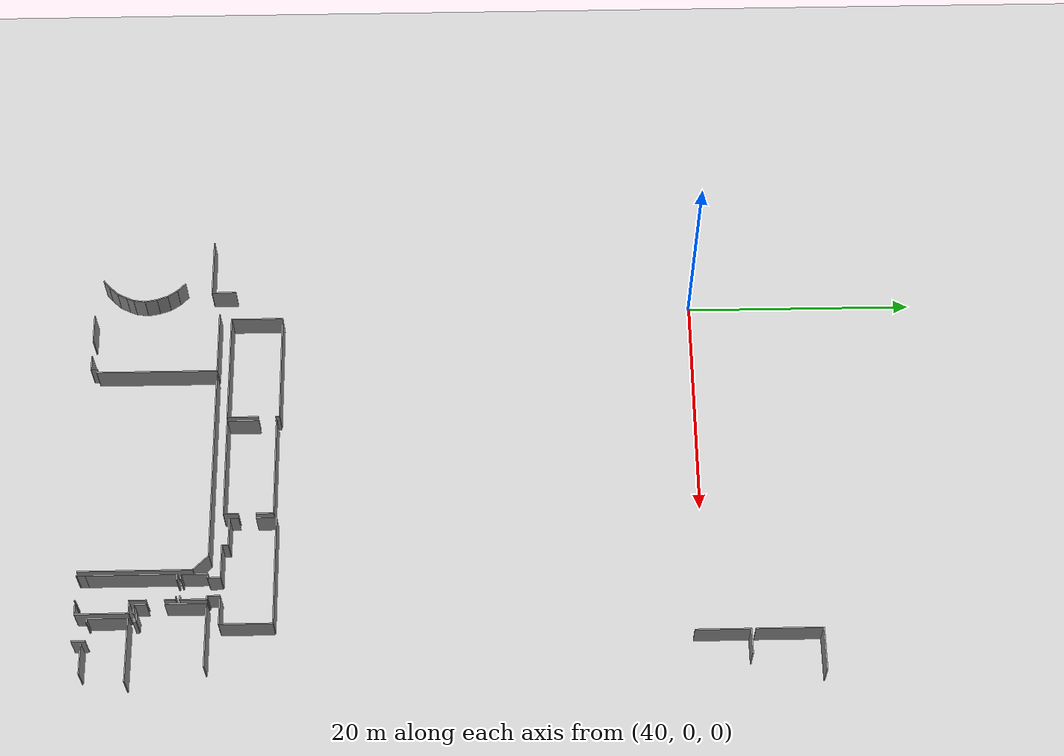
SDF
<sdf version="1.6">
 <world name="default">
  <model name="ground_plane">
   <static>1</static>
   <link name="link">
    <collision name="collision">
     <geometry><plane><normal>0 0 1</normal><size>100 100</size></plane></geometry>
     <surface><friction><ode><mu>100</mu><mu2>50</mu2></ode></friction></surface>
    </collision>
    <visual name="visual">
     <cast_shadows>0</cast_shadows>
     <geometry><plane><normal>0 0 1</normal><size>100 100</size></plane></geometry>
     <material>
      <script><uri>file://media/materials/scripts/gazebo.material</uri><name>Gazebo/Grey</name></script>
     </material>
    </visual>
   </link>
  </model>
  <model name="0510035520_A_40_1_103">
   <static>1</static>
   <link name="Wall_888">
    <collision name="Wall_888_Collision">
     <geometry><box><size>2.15658530085 0.1 2.5</size></box></geometry>
     <pose>1.07829265043 0 1.25 0 0 0</pose>
    </collision>
    <visual name="Wall_888_Visual">
     <pose>1.07829265043 0 1.25 0 0 0</pose>
     <geometry><box><size>2.15658530085 0.1 2.5</size></box></geometry>
     <material>
      <script><uri>file://media/materials/scripts/gazebo.material</uri><name>Gazebo/Grey</name></script>
      <ambient>1 1 1 1</ambient>
     </material>
    </visual>
    <pose>151.033305626 -109.6975273 0 0 0 -1.57079632679</pose>
   </link>
   <link name="Wall_889">
    <collision name="Wall_889_Collision">
     <geometry><box><size>5.26291076833 0.1 2.5</size></box></geometry>
     <pose>2.63145538417 0 1.25 0 0 0</pose>
    </collision>
    <visual name="Wall_889_Visual">
     <pose>2.63145538417 0 1.25 0 0 0</pose>
     <geometry><box><size>5.26291076833 0.1 2.5</size></box></geometry>
     <material>
      <script><uri>file://media/materials/scripts/gazebo.material</uri><name>Gazebo/Grey</name></script>
      <ambient>1 1 1 1</ambient>
     </material>
    </visual>
    <pose>151.033305626 -111.854112601 0 0 0 3.14159265359</pose>
   </link>
   <link name="Wall_895">
    <collision name="Wall_895_Collision">
     <geometry><box><size>1.02171592635 0.1 2.5</size></box></geometry>
     <pose>0.510857963173 0 1.25 0 0 0</pose>
    </collision>
    <visual name="Wall_895_Visual">
     <pose>0.510857963173 0 1.25 0 0 0</pose>
     <geometry><box><size>1.02171592635 0.1 2.5</size></box></geometry>
     <material>
      <script><uri>file://media/materials/scripts/gazebo.material</uri><name>Gazebo/Grey</name></script>
      <ambient>1 1 1 1</ambient>
     </material>
    </visual>
    <pose>150.063768631 -114.301812806 0 0 0 -0.781709439569</pose>
   </link>
   <link name="Wall_896">
    <collision name="Wall_896_Collision">
     <geometry><box><size>1.01096798476 0.1 2.5</size></box></geometry>
     <pose>0.505483992382 0 1.25 0 0 0</pose>
    </collision>
    <visual name="Wall_896_Visual">
     <pose>0.505483992382 0 1.25 0 0 0</pose>
     <geometry><box><size>1.01096798476 0.1 2.5</size></box></geometry>
     <material>
      <script><uri>file://media/materials/scripts/gazebo.material</uri><name>Gazebo/Grey</name></script>
      <ambient>1 1 1 1</ambient>
     </material>
    </visual>
    <pose>150.788890933 -115.021605193 0 0 0 -0.993168673032</pose>
   </link>
   <link name="Wall_897">
    <collision name="Wall_897_Collision">
     <geometry><box><size>1.00410115185 0.1 2.5</size></box></geometry>
     <pose>0.502050575927 0 1.25 0 0 0</pose>
    </collision>
    <visual name="Wall_897_Visual">
     <pose>0.502050575927 0 1.25 0 0 0</pose>
     <geometry><box><size>1.00410115185 0.1 2.5</size></box></geometry>
     <material>
      <script><uri>file://media/materials/scripts/gazebo.material</uri><name>Gazebo/Grey</name></script>
      <ambient>1 1 1 1</ambient>
     </material>
    </visual>
    <pose>151.340917888 -115.868554134 0 0 0 -1.23329841324</pose>
   </link>
   <link name="Wall_898">
    <collision name="Wall_898_Collision">
     <geometry><box><size>1.08447667159 0.1 2.5</size></box></geometry>
     <pose>0.542238335793 0 1.25 0 0 0</pose>
    </collision>
    <visual name="Wall_898_Visual">
     <pose>0.542238335793 0 1.25 0 0 0</pose>
     <geometry><box><size>1.08447667159 0.1 2.5</size></box></geometry>
     <material>
      <script><uri>file://media/materials/scripts/gazebo.material</uri><name>Gazebo/Grey</name></script>
      <ambient>1 1 1 1</ambient>
     </material>
    </visual>
    <pose>151.673403088 -116.816010051 0 0 0 -1.39768321602</pose>
   </link>
   <link name="Wall_899">
    <collision name="Wall_899_Collision">
     <geometry><box><size>1.03104480419 0.1 2.5</size></box></geometry>
     <pose>0.515522402095 0 1.25 0 0 0</pose>
    </collision>
    <visual name="Wall_899_Visual">
     <pose>0.515522402095 0 1.25 0 0 0</pose>
     <geometry><box><size>1.03104480419 0.1 2.5</size></box></geometry>
     <material>
      <script><uri>file://media/materials/scripts/gazebo.material</uri><name>Gazebo/Grey</name></script>
      <ambient>1 1 1 1</ambient>
     </material>
    </visual>
    <pose>151.860203933 -117.884277384 0 0 0 -1.71008242127</pose>
   </link>
   <link name="Wall_900">
    <collision name="Wall_900_Collision">
     <geometry><box><size>0.680349575722 0.1 2.5</size></box></geometry>
     <pose>0.340174787861 0 1.25 0 0 0</pose>
    </collision>
    <visual name="Wall_900_Visual">
     <pose>0.340174787861 0 1.25 0 0 0</pose>
     <geometry><box><size>0.680349575722 0.1 2.5</size></box></geometry>
     <material>
      <script><uri>file://media/materials/scripts/gazebo.material</uri><name>Gazebo/Grey</name></script>
      <ambient>1 1 1 1</ambient>
     </material>
    </visual>
    <pose>151.717057633 -118.905336895 0 0 0 -1.95913073937</pose>
   </link>
   <link name="Wall_901">
    <collision name="Wall_901_Collision">
     <geometry><box><size>0.930298660078 0.1 2.5</size></box></geometry>
     <pose>0.465149330039 0 1.25 0 0 0</pose>
    </collision>
    <visual name="Wall_901_Visual">
     <pose>0.465149330039 0 1.25 0 0 0</pose>
     <geometry><box><size>0.930298660078 0.1 2.5</size></box></geometry>
     <material>
      <script><uri>file://media/materials/scripts/gazebo.material</uri><name>Gazebo/Grey</name></script>
      <ambient>1 1 1 1</ambient>
     </material>
    </visual>
    <pose>151.459445054 -119.535028331 0 0 0 -2.0389583024</pose>
   </link>
   <link name="Wall_902">
    <collision name="Wall_902_Collision">
     <geometry><box><size>1.08077997737 0.1 2.5</size></box></geometry>
     <pose>0.540389988685 0 1.25 0 0 0</pose>
    </collision>
    <visual name="Wall_902_Visual">
     <pose>0.540389988685 0 1.25 0 0 0</pose>
     <geometry><box><size>1.08077997737 0.1 2.5</size></box></geometry>
     <material>
      <script><uri>file://media/materials/scripts/gazebo.material</uri><name>Gazebo/Grey</name></script>
      <ambient>1 1 1 1</ambient>
     </material>
    </visual>
    <pose>151.039650764 -120.365226109 0 0 0 -2.3110124944</pose>
   </link>
   <link name="Wall_903">
    <collision name="Wall_903_Collision">
     <geometry><box><size>0.866992590739 0.1 2.5</size></box></geometry>
     <pose>0.433496295369 0 1.25 0 0 0</pose>
    </collision>
    <visual name="Wall_903_Visual">
     <pose>0.433496295369 0 1.25 0 0 0</pose>
     <geometry><box><size>0.866992590739 0.1 2.5</size></box></geometry>
     <material>
      <script><uri>file://media/materials/scripts/gazebo.material</uri><name>Gazebo/Grey</name></script>
      <ambient>1 1 1 1</ambient>
     </material>
    </visual>
    <pose>150.310721379 -121.163190589 0 0 0 -2.45779928856</pose>
   </link>
   <link name="Wall_1046">
    <collision name="Wall_1046_Collision">
     <geometry><box><size>2.70125189561 0.1 2.5</size></box></geometry>
     <pose>1.3506259478 0 1.25 0 0 0</pose>
    </collision>
    <visual name="Wall_1046_Visual">
     <pose>1.3506259478 0 1.25 0 0 0</pose>
     <geometry><box><size>2.70125189561 0.1 2.5</size></box></geometry>
     <material>
      <script><uri>file://media/materials/scripts/gazebo.material</uri><name>Gazebo/Grey</name></script>
      <ambient>1 1 1 1</ambient>
     </material>
    </visual>
    <pose>185.020907228 -121.533239002 0 0 0 0.0</pose>
   </link>
   <link name="Wall_1051">
    <collision name="Wall_1051_Collision">
     <geometry><box><size>5.72635960432 0.1 2.5</size></box></geometry>
     <pose>2.86317980216 0 1.25 0 0 0</pose>
    </collision>
    <visual name="Wall_1051_Visual">
     <pose>2.86317980216 0 1.25 0 0 0</pose>
     <geometry><box><size>5.72635960432 0.1 2.5</size></box></geometry>
     <material>
      <script><uri>file://media/materials/scripts/gazebo.material</uri><name>Gazebo/Grey</name></script>
      <ambient>1 1 1 1</ambient>
     </material>
    </visual>
    <pose>182.744018122 -117.686055292 0 0 0 0.0</pose>
   </link>
   <link name="Wall_1054">
    <collision name="Wall_1054_Collision">
     <geometry><box><size>1.22334249148 0.1 2.5</size></box></geometry>
     <pose>0.611671245741 0 1.25 0 0 0</pose>
    </collision>
    <visual name="Wall_1054_Visual">
     <pose>0.611671245741 0 1.25 0 0 0</pose>
     <geometry><box><size>1.22334249148 0.1 2.5</size></box></geometry>
     <material>
      <script><uri>file://media/materials/scripts/gazebo.material</uri><name>Gazebo/Grey</name></script>
      <ambient>1 1 1 1</ambient>
     </material>
    </visual>
    <pose>184.760756594 -121.144662788 0 0 0 -1.57079632679</pose>
   </link>
   <link name="Wall_1058">
    <collision name="Wall_1058_Collision">
     <geometry><box><size>0.338322726379 0.1 2.5</size></box></geometry>
     <pose>0.169161363189 0 1.25 0 0 0</pose>
    </collision>
    <visual name="Wall_1058_Visual">
     <pose>0.169161363189 0 1.25 0 0 0</pose>
     <geometry><box><size>0.338322726379 0.1 2.5</size></box></geometry>
     <material>
      <script><uri>file://media/materials/scripts/gazebo.material</uri><name>Gazebo/Grey</name></script>
      <ambient>1 1 1 1</ambient>
     </material>
    </visual>
    <pose>183.079802793 -121.175627058 0 0 0 3.14159265359</pose>
   </link>
   <link name="Wall_1059">
    <collision name="Wall_1059_Collision">
     <geometry><box><size>3.48957268967 0.1 2.5</size></box></geometry>
     <pose>1.74478634484 0 1.25 0 0 0</pose>
    </collision>
    <visual name="Wall_1059_Visual">
     <pose>1.74478634484 0 1.25 0 0 0</pose>
     <geometry><box><size>3.48957268967 0.1 2.5</size></box></geometry>
     <material>
      <script><uri>file://media/materials/scripts/gazebo.material</uri><name>Gazebo/Grey</name></script>
      <ambient>1 1 1 1</ambient>
     </material>
    </visual>
    <pose>182.741480067 -121.175627058 0 0 0 1.5700690013</pose>
   </link>
   <link name="Wall_1060">
    <collision name="Wall_1060_Collision">
     <geometry><box><size>7.81949353113 0.1 2.5</size></box></geometry>
     <pose>3.90974676557 0 1.25 0 0 0</pose>
    </collision>
    <visual name="Wall_1060_Visual">
     <pose>3.90974676557 0 1.25 0 0 0</pose>
     <geometry><box><size>7.81949353113 0.1 2.5</size></box></geometry>
     <material>
      <script><uri>file://media/materials/scripts/gazebo.material</uri><name>Gazebo/Grey</name></script>
      <ambient>1 1 1 1</ambient>
     </material>
    </visual>
    <pose>178.759525638 -121.542883611 0 0 0 1.57079632679</pose>
   </link>
   <link name="Wall_1061">
    <collision name="Wall_1061_Collision">
     <geometry><box><size>0.506849575828 0.1 2.5</size></box></geometry>
     <pose>0.253424787914 0 1.25 0 0 0</pose>
    </collision>
    <visual name="Wall_1061_Visual">
     <pose>0.253424787914 0 1.25 0 0 0</pose>
     <geometry><box><size>0.506849575828 0.1 2.5</size></box></geometry>
     <material>
      <script><uri>file://media/materials/scripts/gazebo.material</uri><name>Gazebo/Grey</name></script>
      <ambient>1 1 1 1</ambient>
     </material>
    </visual>
    <pose>178.759525638 -113.72339008 0 0 0 0.0</pose>
   </link>
   <link name="Wall_1062">
    <collision name="Wall_1062_Collision">
     <geometry><box><size>0.338830337371 0.1 2.5</size></box></geometry>
     <pose>0.169415168685 0 1.25 0 0 0</pose>
    </collision>
    <visual name="Wall_1062_Visual">
     <pose>0.169415168685 0 1.25 0 0 0</pose>
     <geometry><box><size>0.338830337371 0.1 2.5</size></box></geometry>
     <material>
      <script><uri>file://media/materials/scripts/gazebo.material</uri><name>Gazebo/Grey</name></script>
      <ambient>1 1 1 1</ambient>
     </material>
    </visual>
    <pose>180.783370664 -113.72339008 0 0 0 0.0</pose>
   </link>
   <link name="Wall_1063">
    <collision name="Wall_1063_Collision">
     <geometry><box><size>0.975882132728 0.1 2.5</size></box></geometry>
     <pose>0.487941066364 0 1.25 0 0 0</pose>
    </collision>
    <visual name="Wall_1063_Visual">
     <pose>0.487941066364 0 1.25 0 0 0</pose>
     <geometry><box><size>0.975882132728 0.1 2.5</size></box></geometry>
     <material>
      <script><uri>file://media/materials/scripts/gazebo.material</uri><name>Gazebo/Grey</name></script>
      <ambient>1 1 1 1</ambient>
     </material>
    </visual>
    <pose>181.122201001 -113.72339008 0 0 0 -1.57079632679</pose>
   </link>
   <link name="Wall_1064">
    <collision name="Wall_1064_Collision">
     <geometry><box><size>1.5129345626 0.1 2.5</size></box></geometry>
     <pose>0.756467281299 0 1.25 0 0 0</pose>
    </collision>
    <visual name="Wall_1064_Visual">
     <pose>0.756467281299 0 1.25 0 0 0</pose>
     <geometry><box><size>1.5129345626 0.1 2.5</size></box></geometry>
     <material>
      <script><uri>file://media/materials/scripts/gazebo.material</uri><name>Gazebo/Grey</name></script>
      <ambient>1 1 1 1</ambient>
     </material>
    </visual>
    <pose>181.122201001 -116.200277917 0 0 0 -1.57079632679</pose>
   </link>
   <link name="Wall_1065">
    <collision name="Wall_1065_Collision">
     <geometry><box><size>0.0992379489978 0.1 2.5</size></box></geometry>
     <pose>0.0496189744989 0 1.25 0 0 0</pose>
    </collision>
    <visual name="Wall_1065_Visual">
     <pose>0.0496189744989 0 1.25 0 0 0</pose>
     <geometry><box><size>0.0992379489978 0.1 2.5</size></box></geometry>
     <material>
      <script><uri>file://media/materials/scripts/gazebo.material</uri><name>Gazebo/Grey</name></script>
      <ambient>1 1 1 1</ambient>
     </material>
    </visual>
    <pose>181.122201001 -122.179935407 0 0 0 -1.57079632679</pose>
   </link>
   <link name="Wall_1066">
    <collision name="Wall_1066_Collision">
     <geometry><box><size>0.116750528233 0.1 2.5</size></box></geometry>
     <pose>0.0583752641163 0 1.25 0 0 0</pose>
    </collision>
    <visual name="Wall_1066_Visual">
     <pose>0.0583752641163 0 1.25 0 0 0</pose>
     <geometry><box><size>0.116750528233 0.1 2.5</size></box></geometry>
     <material>
      <script><uri>file://media/materials/scripts/gazebo.material</uri><name>Gazebo/Grey</name></script>
      <ambient>1 1 1 1</ambient>
     </material>
    </visual>
    <pose>181.122201001 -122.279173355 0 0 0 3.14159265359</pose>
   </link>
   <link name="Wall_1067">
    <collision name="Wall_1067_Collision">
     <geometry><box><size>0.0763954543436 0.1 2.5</size></box></geometry>
     <pose>0.0381977271718 0 1.25 0 0 0</pose>
    </collision>
    <visual name="Wall_1067_Visual">
     <pose>0.0381977271718 0 1.25 0 0 0</pose>
     <geometry><box><size>0.0763954543436 0.1 2.5</size></box></geometry>
     <material>
      <script><uri>file://media/materials/scripts/gazebo.material</uri><name>Gazebo/Grey</name></script>
      <ambient>1 1 1 1</ambient>
     </material>
    </visual>
    <pose>178.824499845 -122.279173355 0 0 0 3.14159265359</pose>
   </link>
   <link name="Wall_1068">
    <collision name="Wall_1068_Collision">
     <geometry><box><size>0.736378321607 0.1 2.5</size></box></geometry>
     <pose>0.368189160803 0 1.25 0 0 0</pose>
    </collision>
    <visual name="Wall_1068_Visual">
     <pose>0.368189160803 0 1.25 0 0 0</pose>
     <geometry><box><size>0.736378321607 0.1 2.5</size></box></geometry>
     <material>
      <script><uri>file://media/materials/scripts/gazebo.material</uri><name>Gazebo/Grey</name></script>
      <ambient>1 1 1 1</ambient>
     </material>
    </visual>
    <pose>178.74810439 -122.279173355 0 0 0 1.55528567832</pose>
   </link>
   <link name="Wall_1070">
    <collision name="Wall_1070_Collision">
     <geometry><box><size>17.6478575644 0.1 2.5</size></box></geometry>
     <pose>8.82392878218 0 1.25 0 0 0</pose>
    </collision>
    <visual name="Wall_1070_Visual">
     <pose>8.82392878218 0 1.25 0 0 0</pose>
     <geometry><box><size>17.6478575644 0.1 2.5</size></box></geometry>
     <material>
      <script><uri>file://media/materials/scripts/gazebo.material</uri><name>Gazebo/Grey</name></script>
      <ambient>1 1 1 1</ambient>
     </material>
    </visual>
    <pose>159.45279535 -111.095741778 0 0 0 0.0</pose>
   </link>
   <link name="Wall_1071">
    <collision name="Wall_1071_Collision">
     <geometry><box><size>1.81790381385 0.1 2.5</size></box></geometry>
     <pose>0.908951906926 0 1.25 0 0 0</pose>
    </collision>
    <visual name="Wall_1071_Visual">
     <pose>0.908951906926 0 1.25 0 0 0</pose>
     <geometry><box><size>1.81790381385 0.1 2.5</size></box></geometry>
     <material>
      <script><uri>file://media/materials/scripts/gazebo.material</uri><name>Gazebo/Grey</name></script>
      <ambient>1 1 1 1</ambient>
     </material>
    </visual>
    <pose>177.100652915 -111.095741778 0 0 0 -0.794579463309</pose>
   </link>
   <link name="Wall_1072">
    <collision name="Wall_1072_Collision">
     <geometry><box><size>9.91541931841 0.1 2.5</size></box></geometry>
     <pose>4.9577096592 0 1.25 0 0 0</pose>
    </collision>
    <visual name="Wall_1072_Visual">
     <pose>4.9577096592 0 1.25 0 0 0</pose>
     <geometry><box><size>9.91541931841 0.1 2.5</size></box></geometry>
     <material>
      <script><uri>file://media/materials/scripts/gazebo.material</uri><name>Gazebo/Grey</name></script>
      <ambient>1 1 1 1</ambient>
     </material>
    </visual>
    <pose>178.374248894 -112.392941669 0 0 0 -1.57079632679</pose>
   </link>
   <link name="Wall_1076">
    <collision name="Wall_1076_Collision">
     <geometry><box><size>5.79767894874 0.1 2.5</size></box></geometry>
     <pose>2.89883947437 0 1.25 0 0 0</pose>
    </collision>
    <visual name="Wall_1076_Visual">
     <pose>2.89883947437 0 1.25 0 0 0</pose>
     <geometry><box><size>5.79767894874 0.1 2.5</size></box></geometry>
     <material>
      <script><uri>file://media/materials/scripts/gazebo.material</uri><name>Gazebo/Grey</name></script>
      <ambient>1 1 1 1</ambient>
     </material>
    </visual>
    <pose>153.272631519 -111.088635224 0 0 0 0.0</pose>
   </link>
   <link name="Wall_1077">
    <collision name="Wall_1077_Collision">
     <geometry><box><size>10.6816581113 0.1 2.5</size></box></geometry>
     <pose>5.34082905565 0 1.25 0 0 0</pose>
    </collision>
    <visual name="Wall_1077_Visual">
     <pose>5.34082905565 0 1.25 0 0 0</pose>
     <geometry><box><size>10.6816581113 0.1 2.5</size></box></geometry>
     <material>
      <script><uri>file://media/materials/scripts/gazebo.material</uri><name>Gazebo/Grey</name></script>
      <ambient>1 1 1 1</ambient>
     </material>
    </visual>
    <pose>159.070310468 -111.088635224 0 0 0 -1.57079632679</pose>
   </link>
   <link name="Wall_1078">
    <collision name="Wall_1078_Collision">
     <geometry><box><size>0.326901479052 0.1 2.5</size></box></geometry>
     <pose>0.163450739526 0 1.25 0 0 0</pose>
    </collision>
    <visual name="Wall_1078_Visual">
     <pose>0.163450739526 0 1.25 0 0 0</pose>
     <geometry><box><size>0.326901479052 0.1 2.5</size></box></geometry>
     <material>
      <script><uri>file://media/materials/scripts/gazebo.material</uri><name>Gazebo/Grey</name></script>
      <ambient>1 1 1 1</ambient>
     </material>
    </visual>
    <pose>159.070310468 -121.770293336 0 0 0 3.14159265359</pose>
   </link>
   <link name="Wall_1079">
    <collision name="Wall_1079_Collision">
     <geometry><box><size>0.529184459489 0.1 2.5</size></box></geometry>
     <pose>0.264592229745 0 1.25 0 0 0</pose>
    </collision>
    <visual name="Wall_1079_Visual">
     <pose>0.264592229745 0 1.25 0 0 0</pose>
     <geometry><box><size>0.529184459489 0.1 2.5</size></box></geometry>
     <material>
      <script><uri>file://media/materials/scripts/gazebo.material</uri><name>Gazebo/Grey</name></script>
      <ambient>1 1 1 1</ambient>
     </material>
    </visual>
    <pose>158.743408989 -121.770293336 0 0 0 -1.57079632679</pose>
   </link>
   <link name="Wall_1080">
    <collision name="Wall_1080_Collision">
     <geometry><box><size>1.35303710002 0.1 2.5</size></box></geometry>
     <pose>0.676518550009 0 1.25 0 0 0</pose>
    </collision>
    <visual name="Wall_1080_Visual">
     <pose>0.676518550009 0 1.25 0 0 0</pose>
     <geometry><box><size>1.35303710002 0.1 2.5</size></box></geometry>
     <material>
      <script><uri>file://media/materials/scripts/gazebo.material</uri><name>Gazebo/Grey</name></script>
      <ambient>1 1 1 1</ambient>
     </material>
    </visual>
    <pose>158.743408989 -122.299477795 0 0 0 3.14159265359</pose>
   </link>
   <link name="Wall_1081">
    <collision name="Wall_1081_Collision">
     <geometry><box><size>2.59293271033 0.1 2.5</size></box></geometry>
     <pose>1.29646635517 0 1.25 0 0 0</pose>
    </collision>
    <visual name="Wall_1081_Visual">
     <pose>1.29646635517 0 1.25 0 0 0</pose>
     <geometry><box><size>2.59293271033 0.1 2.5</size></box></geometry>
     <material>
      <script><uri>file://media/materials/scripts/gazebo.material</uri><name>Gazebo/Grey</name></script>
      <ambient>1 1 1 1</ambient>
     </material>
    </visual>
    <pose>155.865508468 -122.299477795 0 0 0 -3.13503440776</pose>
   </link>
   <link name="Wall_1124">
    <collision name="Wall_1124_Collision">
     <geometry><box><size>0.928928115938 0.1 2.5</size></box></geometry>
     <pose>0.464464057969 0 1.25 0 0 0</pose>
    </collision>
    <visual name="Wall_1124_Visual">
     <pose>0.464464057969 0 1.25 0 0 0</pose>
     <geometry><box><size>0.928928115938 0.1 2.5</size></box></geometry>
     <material>
      <script><uri>file://media/materials/scripts/gazebo.material</uri><name>Gazebo/Grey</name></script>
      <ambient>1 1 1 1</ambient>
     </material>
    </visual>
    <pose>182.318386305 -122.245924836 0 0 0 3.14159265359</pose>
   </link>
   <link name="Wall_1125">
    <collision name="Wall_1125_Collision">
     <geometry><box><size>0.0715731499166 0.1 2.5</size></box></geometry>
     <pose>0.0357865749583 0 1.25 0 0 0</pose>
    </collision>
    <visual name="Wall_1125_Visual">
     <pose>0.0357865749583 0 1.25 0 0 0</pose>
     <geometry><box><size>0.0715731499166 0.1 2.5</size></box></geometry>
     <material>
      <script><uri>file://media/materials/scripts/gazebo.material</uri><name>Gazebo/Grey</name></script>
      <ambient>1 1 1 1</ambient>
     </material>
    </visual>
    <pose>181.389458189 -122.245924836 0 0 0 1.57079632679</pose>
   </link>
   <link name="Wall_1126">
    <collision name="Wall_1126_Collision">
     <geometry><box><size>0.0538067651855 0.1 2.5</size></box></geometry>
     <pose>0.0269033825927 0 1.25 0 0 0</pose>
    </collision>
    <visual name="Wall_1126_Visual">
     <pose>0.0269033825927 0 1.25 0 0 0</pose>
     <geometry><box><size>0.0538067651855 0.1 2.5</size></box></geometry>
     <material>
      <script><uri>file://media/materials/scripts/gazebo.material</uri><name>Gazebo/Grey</name></script>
      <ambient>1 1 1 1</ambient>
     </material>
    </visual>
    <pose>181.389458189 -117.712704869 0 0 0 1.57079632679</pose>
   </link>
   <link name="Wall_1127">
    <collision name="Wall_1127_Collision">
     <geometry><box><size>0.907100843269 0.1 2.5</size></box></geometry>
     <pose>0.453550421634 0 1.25 0 0 0</pose>
    </collision>
    <visual name="Wall_1127_Visual">
     <pose>0.453550421634 0 1.25 0 0 0</pose>
     <geometry><box><size>0.907100843269 0.1 2.5</size></box></geometry>
     <material>
      <script><uri>file://media/materials/scripts/gazebo.material</uri><name>Gazebo/Grey</name></script>
      <ambient>1 1 1 1</ambient>
     </material>
    </visual>
    <pose>181.389458189 -117.658898103 0 0 0 0.0</pose>
   </link>
   <link name="Wall_1128">
    <collision name="Wall_1128_Collision">
     <geometry><box><size>4.58707866408 0.1 2.5</size></box></geometry>
     <pose>2.29353933204 0 1.25 0 0 0</pose>
    </collision>
    <visual name="Wall_1128_Visual">
     <pose>2.29353933204 0 1.25 0 0 0</pose>
     <geometry><box><size>4.58707866408 0.1 2.5</size></box></geometry>
     <material>
      <script><uri>file://media/materials/scripts/gazebo.material</uri><name>Gazebo/Grey</name></script>
      <ambient>1 1 1 1</ambient>
     </material>
    </visual>
    <pose>182.296559032 -117.658898103 0 0 0 -1.56603788321</pose>
   </link>
   <link name="Wall_1129">
    <collision name="Wall_1129_Collision">
     <geometry><box><size>5.72864385378 0.1 2.5</size></box></geometry>
     <pose>2.86432192689 0 1.25 0 0 0</pose>
    </collision>
    <visual name="Wall_1129_Visual">
     <pose>2.86432192689 0 1.25 0 0 0</pose>
     <geometry><box><size>5.72864385378 0.1 2.5</size></box></geometry>
     <material>
      <script><uri>file://media/materials/scripts/gazebo.material</uri><name>Gazebo/Grey</name></script>
      <ambient>1 1 1 1</ambient>
     </material>
    </visual>
    <pose>181.493772248 -111.095741778 0 0 0 0.0</pose>
   </link>
   <link name="Wall_1132">
    <collision name="Wall_1132_Collision">
     <geometry><box><size>0.290353487605 0.1 2.5</size></box></geometry>
     <pose>0.145176743802 0 1.25 0 0 0</pose>
    </collision>
    <visual name="Wall_1132_Visual">
     <pose>0.145176743802 0 1.25 0 0 0</pose>
     <geometry><box><size>0.290353487605 0.1 2.5</size></box></geometry>
     <material>
      <script><uri>file://media/materials/scripts/gazebo.material</uri><name>Gazebo/Grey</name></script>
      <ambient>1 1 1 1</ambient>
     </material>
    </visual>
    <pose>183.083609876 -117.247225589 0 0 0 1.57079632679</pose>
   </link>
   <link name="Wall_1133">
    <collision name="Wall_1133_Collision">
     <geometry><box><size>0.77156870832 0.1 2.5</size></box></geometry>
     <pose>0.38578435416 0 1.25 0 0 0</pose>
    </collision>
    <visual name="Wall_1133_Visual">
     <pose>0.38578435416 0 1.25 0 0 0</pose>
     <geometry><box><size>0.77156870832 0.1 2.5</size></box></geometry>
     <material>
      <script><uri>file://media/materials/scripts/gazebo.material</uri><name>Gazebo/Grey</name></script>
      <ambient>1 1 1 1</ambient>
     </material>
    </visual>
    <pose>183.083609876 -116.956872101 0 0 0 3.14159265359</pose>
   </link>
   <link name="Wall_1134">
    <collision name="Wall_1134_Collision">
     <geometry><box><size>0.273602324858 0.1 2.5</size></box></geometry>
     <pose>0.136801162429 0 1.25 0 0 0</pose>
    </collision>
    <visual name="Wall_1134_Visual">
     <pose>0.136801162429 0 1.25 0 0 0</pose>
     <geometry><box><size>0.273602324858 0.1 2.5</size></box></geometry>
     <material>
      <script><uri>file://media/materials/scripts/gazebo.material</uri><name>Gazebo/Grey</name></script>
      <ambient>1 1 1 1</ambient>
     </material>
    </visual>
    <pose>182.312041167 -116.956872101 0 0 0 -1.57079632679</pose>
   </link>
   <link name="Wall_1135">
    <collision name="Wall_1135_Collision">
     <geometry><box><size>0.807355283279 0.1 2.5</size></box></geometry>
     <pose>0.403677641639 0 1.25 0 0 0</pose>
    </collision>
    <visual name="Wall_1135_Visual">
     <pose>0.403677641639 0 1.25 0 0 0</pose>
     <geometry><box><size>0.807355283279 0.1 2.5</size></box></geometry>
     <material>
      <script><uri>file://media/materials/scripts/gazebo.material</uri><name>Gazebo/Grey</name></script>
      <ambient>1 1 1 1</ambient>
     </material>
    </visual>
    <pose>182.312041167 -117.230474426 0 0 0 3.14159265359</pose>
   </link>
   <link name="Wall_1136">
    <collision name="Wall_1136_Collision">
     <geometry><box><size>1.04669386616 0.1 2.5</size></box></geometry>
     <pose>0.523346933078 0 1.25 0 0 0</pose>
    </collision>
    <visual name="Wall_1136_Visual">
     <pose>0.523346933078 0 1.25 0 0 0</pose>
     <geometry><box><size>1.04669386616 0.1 2.5</size></box></geometry>
     <material>
      <script><uri>file://media/materials/scripts/gazebo.material</uri><name>Gazebo/Grey</name></script>
      <ambient>1 1 1 1</ambient>
     </material>
    </visual>
    <pose>181.504685884 -117.230474426 0 0 0 1.57079632679</pose>
   </link>
   <link name="Wall_1137">
    <collision name="Wall_1137_Collision">
     <geometry><box><size>3.54009588308 0.1 2.5</size></box></geometry>
     <pose>1.77004794154 0 1.25 0 0 0</pose>
    </collision>
    <visual name="Wall_1137_Visual">
     <pose>1.77004794154 0 1.25 0 0 0</pose>
     <geometry><box><size>3.54009588308 0.1 2.5</size></box></geometry>
     <material>
      <script><uri>file://media/materials/scripts/gazebo.material</uri><name>Gazebo/Grey</name></script>
      <ambient>1 1 1 1</ambient>
     </material>
    </visual>
    <pose>181.504685884 -114.635820839 0 0 0 1.57387919629</pose>
   </link>
   <link name="Wall_1138">
    <collision name="Wall_1138_Collision">
     <geometry><box><size>9.88394743688 0.1 2.5</size></box></geometry>
     <pose>4.94197371844 0 1.25 0 0 0</pose>
    </collision>
    <visual name="Wall_1138_Visual">
     <pose>4.94197371844 0 1.25 0 0 0</pose>
     <geometry><box><size>9.88394743688 0.1 2.5</size></box></geometry>
     <material>
      <script><uri>file://media/materials/scripts/gazebo.material</uri><name>Gazebo/Grey</name></script>
      <ambient>1 1 1 1</ambient>
     </material>
    </visual>
    <pose>173.550421634 -105.408975831 0 0 0 0.0</pose>
   </link>
   <link name="Wall_1139">
    <collision name="Wall_1139_Collision">
     <geometry><box><size>4.58245823313 0.1 2.5</size></box></geometry>
     <pose>2.29122911657 0 1.25 0 0 0</pose>
    </collision>
    <visual name="Wall_1139_Visual">
     <pose>2.29122911657 0 1.25 0 0 0</pose>
     <geometry><box><size>4.58245823313 0.1 2.5</size></box></geometry>
     <material>
      <script><uri>file://media/materials/scripts/gazebo.material</uri><name>Gazebo/Grey</name></script>
      <ambient>1 1 1 1</ambient>
     </material>
    </visual>
    <pose>183.434369071 -105.408975831 0 0 0 -1.57079632679</pose>
   </link>
   <link name="Wall_1140">
    <collision name="Wall_1140_Collision">
     <geometry><box><size>2.62130316432 0.1 2.5</size></box></geometry>
     <pose>1.31065158216 0 1.25 0 0 0</pose>
    </collision>
    <visual name="Wall_1140_Visual">
     <pose>1.31065158216 0 1.25 0 0 0</pose>
     <geometry><box><size>2.62130316432 0.1 2.5</size></box></geometry>
     <material>
      <script><uri>file://media/materials/scripts/gazebo.material</uri><name>Gazebo/Grey</name></script>
      <ambient>1 1 1 1</ambient>
     </material>
    </visual>
    <pose>183.434369071 -109.991434065 0 0 0 3.14159265359</pose>
   </link>
   <link name="Wall_1141">
    <collision name="Wall_1141_Collision">
     <geometry><box><size>1.08730274554 0.1 2.5</size></box></geometry>
     <pose>0.54365137277 0 1.25 0 0 0</pose>
    </collision>
    <visual name="Wall_1141_Visual">
     <pose>0.54365137277 0 1.25 0 0 0</pose>
     <geometry><box><size>1.08730274554 0.1 2.5</size></box></geometry>
     <material>
      <script><uri>file://media/materials/scripts/gazebo.material</uri><name>Gazebo/Grey</name></script>
      <ambient>1 1 1 1</ambient>
     </material>
    </visual>
    <pose>180.813065907 -109.991434065 0 0 0 -1.57079632679</pose>
   </link>
   <link name="Wall_1142">
    <collision name="Wall_1142_Collision">
     <geometry><box><size>0.309896510809 0.1 2.5</size></box></geometry>
     <pose>0.154948255404 0 1.25 0 0 0</pose>
    </collision>
    <visual name="Wall_1142_Visual">
     <pose>0.154948255404 0 1.25 0 0 0</pose>
     <geometry><box><size>0.309896510809 0.1 2.5</size></box></geometry>
     <material>
      <script><uri>file://media/materials/scripts/gazebo.material</uri><name>Gazebo/Grey</name></script>
      <ambient>1 1 1 1</ambient>
     </material>
    </visual>
    <pose>180.813065907 -111.07873681 0 0 0 0.0</pose>
   </link>
   <link name="Wall_1143">
    <collision name="Wall_1143_Collision">
     <geometry><box><size>2.30658434908 0.1 2.5</size></box></geometry>
     <pose>1.15329217454 0 1.25 0 0 0</pose>
    </collision>
    <visual name="Wall_1143_Visual">
     <pose>1.15329217454 0 1.25 0 0 0</pose>
     <geometry><box><size>2.30658434908 0.1 2.5</size></box></geometry>
     <material>
      <script><uri>file://media/materials/scripts/gazebo.material</uri><name>Gazebo/Grey</name></script>
      <ambient>1 1 1 1</ambient>
     </material>
    </visual>
    <pose>181.122962418 -111.07873681 0 0 0 -1.57079632679</pose>
   </link>
   <link name="Wall_1144">
    <collision name="Wall_1144_Collision">
     <geometry><box><size>0.367256552941 0.1 2.5</size></box></geometry>
     <pose>0.18362827647 0 1.25 0 0 0</pose>
    </collision>
    <visual name="Wall_1144_Visual">
     <pose>0.18362827647 0 1.25 0 0 0</pose>
     <geometry><box><size>0.367256552941 0.1 2.5</size></box></geometry>
     <material>
      <script><uri>file://media/materials/scripts/gazebo.material</uri><name>Gazebo/Grey</name></script>
      <ambient>1 1 1 1</ambient>
     </material>
    </visual>
    <pose>181.122962418 -113.385321159 0 0 0 3.14159265359</pose>
   </link>
   <link name="Wall_1145">
    <collision name="Wall_1145_Collision">
     <geometry><box><size>0.425378011561 0.1 2.5</size></box></geometry>
     <pose>0.21268900578 0 1.25 0 0 0</pose>
    </collision>
    <visual name="Wall_1145_Visual">
     <pose>0.21268900578 0 1.25 0 0 0</pose>
     <geometry><box><size>0.425378011561 0.1 2.5</size></box></geometry>
     <material>
      <script><uri>file://media/materials/scripts/gazebo.material</uri><name>Gazebo/Grey</name></script>
      <ambient>1 1 1 1</ambient>
     </material>
    </visual>
    <pose>179.200893395 -113.385321159 0 0 0 3.14159265359</pose>
   </link>
   <link name="Wall_1146">
    <collision name="Wall_1146_Collision">
     <geometry><box><size>2.29135601931 0.1 2.5</size></box></geometry>
     <pose>1.14567800966 0 1.25 0 0 0</pose>
    </collision>
    <visual name="Wall_1146_Visual">
     <pose>1.14567800966 0 1.25 0 0 0</pose>
     <geometry><box><size>2.29135601931 0.1 2.5</size></box></geometry>
     <material>
      <script><uri>file://media/materials/scripts/gazebo.material</uri><name>Gazebo/Grey</name></script>
      <ambient>1 1 1 1</ambient>
     </material>
    </visual>
    <pose>178.775515384 -113.385321159 0 0 0 1.57079632679</pose>
   </link>
   <link name="Wall_1147">
    <collision name="Wall_1147_Collision">
     <geometry><box><size>0.370809829887 0.1 2.5</size></box></geometry>
     <pose>0.185404914943 0 1.25 0 0 0</pose>
    </collision>
    <visual name="Wall_1147_Visual">
     <pose>0.185404914943 0 1.25 0 0 0</pose>
     <geometry><box><size>0.370809829887 0.1 2.5</size></box></geometry>
     <material>
      <script><uri>file://media/materials/scripts/gazebo.material</uri><name>Gazebo/Grey</name></script>
      <ambient>1 1 1 1</ambient>
     </material>
    </visual>
    <pose>178.775515384 -111.09396514 0 0 0 0.0</pose>
   </link>
   <link name="Wall_1148">
    <collision name="Wall_1148_Collision">
     <geometry><box><size>1.09110982798 0.1 2.5</size></box></geometry>
     <pose>0.545554913992 0 1.25 0 0 0</pose>
    </collision>
    <visual name="Wall_1148_Visual">
     <pose>0.545554913992 0 1.25 0 0 0</pose>
     <geometry><box><size>1.09110982798 0.1 2.5</size></box></geometry>
     <material>
      <script><uri>file://media/materials/scripts/gazebo.material</uri><name>Gazebo/Grey</name></script>
      <ambient>1 1 1 1</ambient>
     </material>
    </visual>
    <pose>179.146325214 -111.09396514 0 0 0 1.57079632679</pose>
   </link>
   <link name="Wall_1149">
    <collision name="Wall_1149_Collision">
     <geometry><box><size>3.02434629222 0.1 2.5</size></box></geometry>
     <pose>1.51217314611 0 1.25 0 0 0</pose>
    </collision>
    <visual name="Wall_1149_Visual">
     <pose>1.51217314611 0 1.25 0 0 0</pose>
     <geometry><box><size>3.02434629222 0.1 2.5</size></box></geometry>
     <material>
      <script><uri>file://media/materials/scripts/gazebo.material</uri><name>Gazebo/Grey</name></script>
      <ambient>1 1 1 1</ambient>
     </material>
    </visual>
    <pose>179.146325214 -110.002855312 0 0 0 3.14159265359</pose>
   </link>
   <link name="Wall_1150">
    <collision name="Wall_1150_Collision">
     <geometry><box><size>0.55228075964 0.1 2.5</size></box></geometry>
     <pose>0.27614037982 0 1.25 0 0 0</pose>
    </collision>
    <visual name="Wall_1150_Visual">
     <pose>0.27614037982 0 1.25 0 0 0</pose>
     <geometry><box><size>0.55228075964 0.1 2.5</size></box></geometry>
     <material>
      <script><uri>file://media/materials/scripts/gazebo.material</uri><name>Gazebo/Grey</name></script>
      <ambient>1 1 1 1</ambient>
     </material>
    </visual>
    <pose>176.121978921 -110.002855312 0 0 0 1.57079632679</pose>
   </link>
   <link name="Wall_1151">
    <collision name="Wall_1151_Collision">
     <geometry><box><size>2.55252187486 0.1 2.5</size></box></geometry>
     <pose>1.27626093743 0 1.25 0 0 0</pose>
    </collision>
    <visual name="Wall_1151_Visual">
     <pose>1.27626093743 0 1.25 0 0 0</pose>
     <geometry><box><size>2.55252187486 0.1 2.5</size></box></geometry>
     <material>
      <script><uri>file://media/materials/scripts/gazebo.material</uri><name>Gazebo/Grey</name></script>
      <ambient>1 1 1 1</ambient>
     </material>
    </visual>
    <pose>176.121978921 -109.450574552 0 0 0 3.14159265359</pose>
   </link>
   <link name="Wall_1152">
    <collision name="Wall_1152_Collision">
     <geometry><box><size>0.782482344655 0.1 2.5</size></box></geometry>
     <pose>0.391241172328 0 1.25 0 0 0</pose>
    </collision>
    <visual name="Wall_1152_Visual">
     <pose>0.391241172328 0 1.25 0 0 0</pose>
     <geometry><box><size>0.782482344655 0.1 2.5</size></box></geometry>
     <material>
      <script><uri>file://media/materials/scripts/gazebo.material</uri><name>Gazebo/Grey</name></script>
      <ambient>1 1 1 1</ambient>
     </material>
    </visual>
    <pose>173.569457047 -109.450574552 0 0 0 1.57079632679</pose>
   </link>
   <link name="Wall_1153">
    <collision name="Wall_1153_Collision">
     <geometry><box><size>1.73943322489 0.1 2.5</size></box></geometry>
     <pose>0.869716612447 0 1.25 0 0 0</pose>
    </collision>
    <visual name="Wall_1153_Visual">
     <pose>0.869716612447 0 1.25 0 0 0</pose>
     <geometry><box><size>1.73943322489 0.1 2.5</size></box></geometry>
     <material>
      <script><uri>file://media/materials/scripts/gazebo.material</uri><name>Gazebo/Grey</name></script>
      <ambient>1 1 1 1</ambient>
     </material>
    </visual>
    <pose>173.569457047 -107.148304897 0 0 0 1.58174000196</pose>
   </link>
   <link name="Wall_1154">
    <collision name="Wall_1154_Collision">
     <geometry><box><size>2.77993159942 0.1 2.5</size></box></geometry>
     <pose>1.38996579971 0 1.25 0 0 0</pose>
    </collision>
    <visual name="Wall_1154_Visual">
     <pose>1.38996579971 0 1.25 0 0 0</pose>
     <geometry><box><size>2.77993159942 0.1 2.5</size></box></geometry>
     <material>
      <script><uri>file://media/materials/scripts/gazebo.material</uri><name>Gazebo/Grey</name></script>
      <ambient>1 1 1 1</ambient>
     </material>
    </visual>
    <pose>164.105557706 -109.996256369 0 0 0 1.57079632679</pose>
   </link>
   <link name="Wall_1155">
    <collision name="Wall_1155_Collision">
     <geometry><box><size>0.0789335093051 0.1 2.5</size></box></geometry>
     <pose>0.0394667546526 0 1.25 0 0 0</pose>
    </collision>
    <visual name="Wall_1155_Visual">
     <pose>0.0394667546526 0 1.25 0 0 0</pose>
     <geometry><box><size>0.0789335093051 0.1 2.5</size></box></geometry>
     <material>
      <script><uri>file://media/materials/scripts/gazebo.material</uri><name>Gazebo/Grey</name></script>
      <ambient>1 1 1 1</ambient>
     </material>
    </visual>
    <pose>164.105557706 -105.735115894 0 0 0 1.57079632679</pose>
   </link>
   <link name="Wall_1156">
    <collision name="Wall_1156_Collision">
     <geometry><box><size>9.04258221712 0.1 2.5</size></box></geometry>
     <pose>4.52129110856 0 1.25 0 0 0</pose>
    </collision>
    <visual name="Wall_1156_Visual">
     <pose>4.52129110856 0 1.25 0 0 0</pose>
     <geometry><box><size>9.04258221712 0.1 2.5</size></box></geometry>
     <material>
      <script><uri>file://media/materials/scripts/gazebo.material</uri><name>Gazebo/Grey</name></script>
      <ambient>1 1 1 1</ambient>
     </material>
    </visual>
    <pose>164.105557706 -105.656182385 0 0 0 0.0</pose>
   </link>
   <link name="Wall_1157">
    <collision name="Wall_1157_Collision">
     <geometry><box><size>1.52714767038 0.1 2.5</size></box></geometry>
     <pose>0.763573835191 0 1.25 0 0 0</pose>
    </collision>
    <visual name="Wall_1157_Visual">
     <pose>0.763573835191 0 1.25 0 0 0</pose>
     <geometry><box><size>1.52714767038 0.1 2.5</size></box></geometry>
     <material>
      <script><uri>file://media/materials/scripts/gazebo.material</uri><name>Gazebo/Grey</name></script>
      <ambient>1 1 1 1</ambient>
     </material>
    </visual>
    <pose>173.148139923 -105.656182385 0 0 0 -1.57079632679</pose>
   </link>
   <link name="Wall_1158">
    <collision name="Wall_1158_Collision">
     <geometry><box><size>1.31217441514 0.1 2.5</size></box></geometry>
     <pose>0.656087207568 0 1.25 0 0 0</pose>
    </collision>
    <visual name="Wall_1158_Visual">
     <pose>0.656087207568 0 1.25 0 0 0</pose>
     <geometry><box><size>1.31217441514 0.1 2.5</size></box></geometry>
     <material>
      <script><uri>file://media/materials/scripts/gazebo.material</uri><name>Gazebo/Grey</name></script>
      <ambient>1 1 1 1</ambient>
     </material>
    </visual>
    <pose>173.148139923 -108.671645484 0 0 0 -1.57079632679</pose>
   </link>
   <link name="Wall_1159">
    <collision name="Wall_1159_Collision">
     <geometry><box><size>9.04259076919 0.1 2.5</size></box></geometry>
     <pose>4.5212953846 0 1.25 0 0 0</pose>
    </collision>
    <visual name="Wall_1159_Visual">
     <pose>4.5212953846 0 1.25 0 0 0</pose>
     <geometry><box><size>9.04259076919 0.1 2.5</size></box></geometry>
     <material>
      <script><uri>file://media/materials/scripts/gazebo.material</uri><name>Gazebo/Grey</name></script>
      <ambient>1 1 1 1</ambient>
     </material>
    </visual>
    <pose>173.148139923 -109.9838199 0 0 0 -3.14021733168</pose>
   </link>
   <link name="Wall_1160">
    <collision name="Wall_1160_Collision">
     <geometry><box><size>4.57357504077 0.1 2.5</size></box></geometry>
     <pose>2.28678752038 0 1.25 0 0 0</pose>
    </collision>
    <visual name="Wall_1160_Visual">
     <pose>2.28678752038 0 1.25 0 0 0</pose>
     <geometry><box><size>4.57357504077 0.1 2.5</size></box></geometry>
     <material>
      <script><uri>file://media/materials/scripts/gazebo.material</uri><name>Gazebo/Grey</name></script>
      <ambient>1 1 1 1</ambient>
     </material>
    </visual>
    <pose>153.830495999 -109.991434065 0 0 0 1.57079632679</pose>
   </link>
   <link name="Wall_1161">
    <collision name="Wall_1161_Collision">
     <geometry><box><size>9.91973401184 0.1 2.5</size></box></geometry>
     <pose>4.95986700592 0 1.25 0 0 0</pose>
    </collision>
    <visual name="Wall_1161_Visual">
     <pose>4.95986700592 0 1.25 0 0 0</pose>
     <geometry><box><size>9.91973401184 0.1 2.5</size></box></geometry>
     <material>
      <script><uri>file://media/materials/scripts/gazebo.material</uri><name>Gazebo/Grey</name></script>
      <ambient>1 1 1 1</ambient>
     </material>
    </visual>
    <pose>153.830495999 -105.417859024 0 0 0 0.0</pose>
   </link>
   <link name="Wall_1162">
    <collision name="Wall_1162_Collision">
     <geometry><box><size>0.343906447294 0.1 2.5</size></box></geometry>
     <pose>0.171953223647 0 1.25 0 0 0</pose>
    </collision>
    <visual name="Wall_1162_Visual">
     <pose>0.171953223647 0 1.25 0 0 0</pose>
     <geometry><box><size>0.343906447294 0.1 2.5</size></box></geometry>
     <material>
      <script><uri>file://media/materials/scripts/gazebo.material</uri><name>Gazebo/Grey</name></script>
      <ambient>1 1 1 1</ambient>
     </material>
    </visual>
    <pose>163.750230011 -105.417859024 0 0 0 -1.57079632679</pose>
   </link>
   <link name="Wall_1163">
    <collision name="Wall_1163_Collision">
     <geometry><box><size>2.75658149377 0.1 2.5</size></box></geometry>
     <pose>1.37829074689 0 1.25 0 0 0</pose>
    </collision>
    <visual name="Wall_1163_Visual">
     <pose>1.37829074689 0 1.25 0 0 0</pose>
     <geometry><box><size>2.75658149377 0.1 2.5</size></box></geometry>
     <material>
      <script><uri>file://media/materials/scripts/gazebo.material</uri><name>Gazebo/Grey</name></script>
      <ambient>1 1 1 1</ambient>
     </material>
    </visual>
    <pose>163.750230011 -107.259217898 0 0 0 -1.57079632679</pose>
   </link>
   <link name="Wall_1164">
    <collision name="Wall_1164_Collision">
     <geometry><box><size>9.91976393544 0.1 2.5</size></box></geometry>
     <pose>4.95988196772 0 1.25 0 0 0</pose>
    </collision>
    <visual name="Wall_1164_Visual">
     <pose>4.95988196772 0 1.25 0 0 0</pose>
     <geometry><box><size>9.91976393544 0.1 2.5</size></box></geometry>
     <material>
      <script><uri>file://media/materials/scripts/gazebo.material</uri><name>Gazebo/Grey</name></script>
      <ambient>1 1 1 1</ambient>
     </material>
    </visual>
    <pose>163.750230011 -110.015799392 0 0 0 3.13913641045</pose>
   </link>
   <link name="Wall_1165">
    <collision name="Wall_1165_Collision">
     <geometry><box><size>4.77687324319 0.1 2.5</size></box></geometry>
     <pose>2.3884366216 0 1.25 0 0 0</pose>
    </collision>
    <visual name="Wall_1165_Visual">
     <pose>2.3884366216 0 1.25 0 0 0</pose>
     <geometry><box><size>4.77687324319 0.1 2.5</size></box></geometry>
     <material>
      <script><uri>file://media/materials/scripts/gazebo.material</uri><name>Gazebo/Grey</name></script>
      <ambient>1 1 1 1</ambient>
     </material>
    </visual>
    <pose>184.622432599 -69.8211305766 0 0 0 1.57079632679</pose>
   </link>
   <link name="Wall_1166">
    <collision name="Wall_1166_Collision">
     <geometry><box><size>2.25353900039 0.1 2.5</size></box></geometry>
     <pose>1.12676950019 0 1.25 0 0 0</pose>
    </collision>
    <visual name="Wall_1166_Visual">
     <pose>1.12676950019 0 1.25 0 0 0</pose>
     <geometry><box><size>2.25353900039 0.1 2.5</size></box></geometry>
     <material>
      <script><uri>file://media/materials/scripts/gazebo.material</uri><name>Gazebo/Grey</name></script>
      <ambient>1 1 1 1</ambient>
     </material>
    </visual>
    <pose>184.622432599 -65.0442573334 0 0 0 0.0</pose>
   </link>
   <link name="Wall_1170">
    <collision name="Wall_1170_Collision">
     <geometry><box><size>5.75021732096 0.1 2.5</size></box></geometry>
     <pose>2.87510866048 0 1.25 0 0 0</pose>
    </collision>
    <visual name="Wall_1170_Visual">
     <pose>2.87510866048 0 1.25 0 0 0</pose>
     <geometry><box><size>5.75021732096 0.1 2.5</size></box></geometry>
     <material>
      <script><uri>file://media/materials/scripts/gazebo.material</uri><name>Gazebo/Grey</name></script>
      <ambient>1 1 1 1</ambient>
     </material>
    </visual>
    <pose>184.61278799 -64.6632952837 0 0 0 1.57079632679</pose>
   </link>
   <link name="Wall_1171">
    <collision name="Wall_1171_Collision">
     <geometry><box><size>3.85429026466 0.1 2.5</size></box></geometry>
     <pose>1.92714513233 0 1.25 0 0 0</pose>
    </collision>
    <visual name="Wall_1171_Visual">
     <pose>1.92714513233 0 1.25 0 0 0</pose>
     <geometry><box><size>3.85429026466 0.1 2.5</size></box></geometry>
     <material>
      <script><uri>file://media/materials/scripts/gazebo.material</uri><name>Gazebo/Grey</name></script>
      <ambient>1 1 1 1</ambient>
     </material>
    </visual>
    <pose>184.61278799 -58.9130779627 0 0 0 0.0</pose>
   </link>
   <pose>-112.2 68.6448144365 0 0 0 0</pose>
  </model>
 </world>
</sdf>
